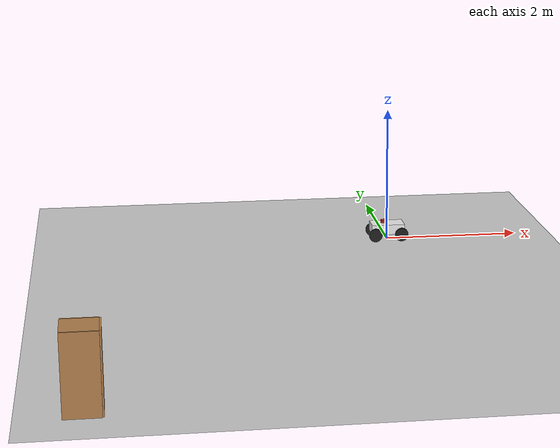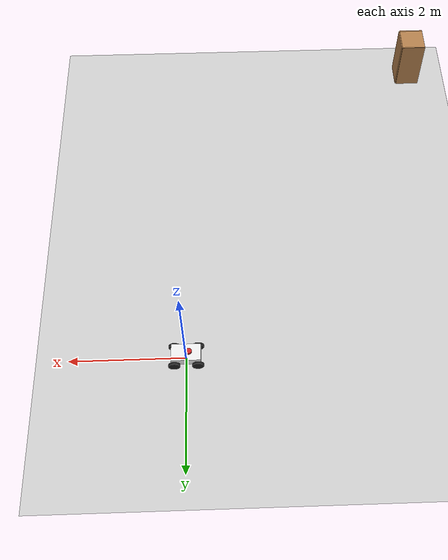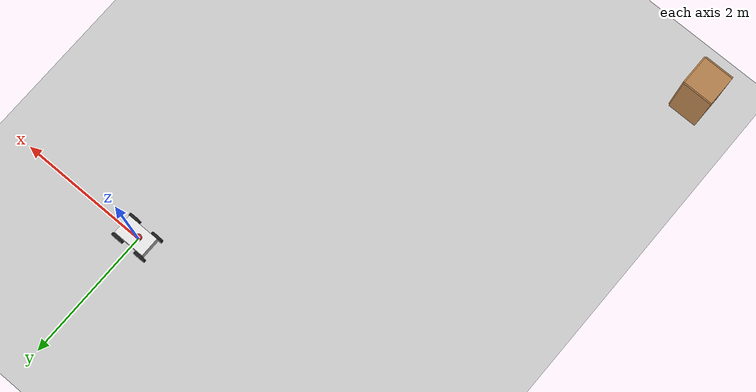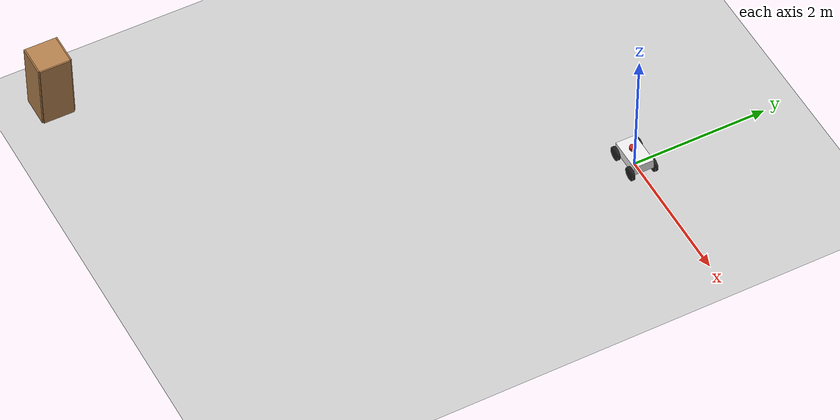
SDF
<sdf version="1.7">
 <world name="default">
  <light name="sun" type="directional">
   <pose>0 0 10 0 -0 0</pose>
   <diffuse>0.8 0.8 0.8 1</diffuse>
   <specular>0.2 0.2 0.2 1</specular>
   <attenuation>
    <range>1000</range>
    <constant>0.9</constant>
    <linear>0.01</linear>
    <quadratic>0.001</quadratic>
   </attenuation>
   <direction>-0.5 0.1 -0.9</direction>
   <spot><inner_angle>0</inner_angle><outer_angle>0</outer_angle><falloff>0</falloff></spot>
  </light>
  <model name="ground_plane">
   <static>1</static>
   <link name="link">
    <collision name="collision">
     <geometry><plane><normal>0 0 1</normal><size>100 100</size></plane></geometry>
     <surface>
      <contact><collide_bitmask>65535</collide_bitmask></contact>
      <friction><ode><mu>100</mu><mu2>50</mu2></ode></friction>
     </surface>
    </collision>
    <visual name="visual">
     <cast_shadows>0</cast_shadows>
     <geometry><plane><normal>0 0 1</normal><size>100 100</size></plane></geometry>
     <material>
      <script><uri>file://media/materials/scripts/gazebo.material</uri><name>Gazebo/Grey</name></script>
     </material>
    </visual>
   </link>
  </model>
  <gravity>0 0 -9.8</gravity>
  <magnetic_field>6e-06 2.3e-05 -4.2e-05</magnetic_field>
  <atmosphere type="adiabatic"/>
  <physics type="ode">
   <max_step_size>0.001</max_step_size>
   <real_time_factor>1</real_time_factor>
   <real_time_update_rate>1000</real_time_update_rate>
  </physics>
  <scene><ambient>0.4 0.4 0.4 1</ambient><background>0.7 0.7 0.7 1</background><shadows>1</shadows></scene>
  <audio><device>default</device></audio>
  <spherical_coordinates>
   <surface_model>EARTH_WGS84</surface_model>
   <latitude_deg>0</latitude_deg>
   <longitude_deg>0</longitude_deg>
   <elevation>0</elevation>
   <heading_deg>0</heading_deg>
  </spherical_coordinates>
  <model name="my_bot">
   <link name="base_link">
    <inertial>
     <pose>-0.008333 0 0.091667 0 -0 0</pose>
     <mass>0.6</mass>
     <inertia>
      <ixx>0.00559667</ixx>
      <ixy>0</ixy>
      <ixz>0.000416667</ixz>
      <iyy>0.0124717</iyy>
      <iyz>0</iyz>
      <izz>0.0145</izz>
     </inertia>
    </inertial>
    <collision name="base_link_fixed_joint_lump__chassis_collision">
     <pose>0 0 0.075 0 -0 0</pose>
     <geometry><box><size>0.5 0.3 0.15</size></box></geometry>
    </collision>
    <collision name="base_link_fixed_joint_lump__laser_frame_collision_1">
     <pose>-0.05 0 0.175 0 -0 0</pose>
     <geometry><cylinder><length>0.04</length><radius>0.05</radius></cylinder></geometry>
    </collision>
    <visual name="base_link_fixed_joint_lump__chassis_visual">
     <pose>0 0 0.075 0 -0 0</pose>
     <geometry><box><size>0.5 0.3 0.15</size></box></geometry>
     <material>
      <script><name>Gazebo/White</name><uri>file://media/materials/scripts/gazebo.material</uri></script>
     </material>
    </visual>
    <visual name="base_link_fixed_joint_lump__laser_frame_visual_1">
     <pose>-0.05 0 0.175 0 -0 0</pose>
     <geometry><cylinder><length>0.04</length><radius>0.05</radius></cylinder></geometry>
     <material>
      <script><name>Gazebo/Red</name><uri>file://media/materials/scripts/gazebo.material</uri></script>
     </material>
    </visual>
    <sensor name="laser" type="ray">
     <visualize>1</visualize>
     <always_on>1</always_on>
     <update_rate>10</update_rate>
     <ray>
      <scan>
       <horizontal>
        <samples>360</samples>
        <min_angle>-3.14</min_angle>
        <max_angle>3.14</max_angle>
        <resolution>1</resolution>
       </horizontal>
       <vertical><samples>1</samples><min_angle>0</min_angle><max_angle>0</max_angle></vertical>
      </scan>
      <range><min>0.3</min><max>12</max><resolution>0.01</resolution></range>
     </ray>
     <plugin name="laser_controller" filename="libgazebo_ros_ray_sensor.so">
      <ros><remapping>~/out:=scan</remapping></ros>
      <output_type>sensor_msgs/LaserScan</output_type>
      <frame_name>laser_frame</frame_name>
     </plugin>
     <pose>-0.05 0 0.175 0 -0 0</pose>
    </sensor>
   </link>
   <joint name="front_left_wheel_joint" type="revolute">
    <pose relative_to="base_link">0.2 0.175 0 -1.5708 0 0</pose>
    <parent>base_link</parent>
    <child>front_left_wheel</child>
    <axis>
     <xyz>0 0 1</xyz>
     <limit><lower>-1e+16</lower><upper>1e+16</upper></limit>
     <dynamics><spring_reference>0</spring_reference><spring_stiffness>0</spring_stiffness></dynamics>
    </axis>
   </joint>
   <link name="front_left_wheel">
    <pose relative_to="front_left_wheel_joint">0 0 0 0 -0 0</pose>
    <inertial>
     <mass>0.1</mass>
     <inertia>
      <ixx>0.000263333</ixx>
      <ixy>0</ixy>
      <ixz>0</ixz>
      <iyy>0.000263333</iyy>
      <iyz>0</iyz>
      <izz>0.0005</izz>
     </inertia>
    </inertial>
    <collision name="front_left_wheel_collision">
     <geometry><cylinder><length>0.04</length><radius>0.1</radius></cylinder></geometry>
    </collision>
    <visual name="front_left_wheel_visual">
     <geometry><cylinder><length>0.04</length><radius>0.1</radius></cylinder></geometry>
     <material>
      <script><name>Gazebo/Black</name><uri>file://media/materials/scripts/gazebo.material</uri></script>
     </material>
    </visual>
   </link>
   <joint name="front_right_wheel_joint" type="revolute">
    <pose relative_to="base_link">0.2 -0.175 0 1.5708 -0 0</pose>
    <parent>base_link</parent>
    <child>front_right_wheel</child>
    <axis>
     <xyz>0 0 -1</xyz>
     <limit><lower>-1e+16</lower><upper>1e+16</upper></limit>
     <dynamics><spring_reference>0</spring_reference><spring_stiffness>0</spring_stiffness></dynamics>
    </axis>
   </joint>
   <link name="front_right_wheel">
    <pose relative_to="front_right_wheel_joint">0 0 0 0 -0 0</pose>
    <inertial>
     <mass>0.1</mass>
     <inertia>
      <ixx>0.000263333</ixx>
      <ixy>0</ixy>
      <ixz>0</ixz>
      <iyy>0.000263333</iyy>
      <iyz>0</iyz>
      <izz>0.0005</izz>
     </inertia>
    </inertial>
    <collision name="front_right_wheel_collision">
     <geometry><cylinder><length>0.04</length><radius>0.1</radius></cylinder></geometry>
    </collision>
    <visual name="front_right_wheel_visual">
     <geometry><cylinder><length>0.04</length><radius>0.1</radius></cylinder></geometry>
     <material>
      <script><name>Gazebo/Black</name><uri>file://media/materials/scripts/gazebo.material</uri></script>
     </material>
    </visual>
   </link>
   <joint name="rear_left_wheel_joint" type="revolute">
    <pose relative_to="base_link">-0.2 0.175 0 -1.5708 0 0</pose>
    <parent>base_link</parent>
    <child>rear_left_wheel</child>
    <axis>
     <xyz>0 0 1</xyz>
     <limit><lower>-1e+16</lower><upper>1e+16</upper></limit>
     <dynamics><spring_reference>0</spring_reference><spring_stiffness>0</spring_stiffness></dynamics>
    </axis>
   </joint>
   <link name="rear_left_wheel">
    <pose relative_to="rear_left_wheel_joint">0 0 0 0 -0 0</pose>
    <inertial>
     <mass>0.1</mass>
     <inertia>
      <ixx>0.000263333</ixx>
      <ixy>0</ixy>
      <ixz>0</ixz>
      <iyy>0.000263333</iyy>
      <iyz>0</iyz>
      <izz>0.0005</izz>
     </inertia>
    </inertial>
    <collision name="rear_left_wheel_collision">
     <geometry><cylinder><length>0.04</length><radius>0.1</radius></cylinder></geometry>
    </collision>
    <visual name="rear_left_wheel_visual">
     <geometry><cylinder><length>0.04</length><radius>0.1</radius></cylinder></geometry>
     <material>
      <script><name>Gazebo/Black</name><uri>file://media/materials/scripts/gazebo.material</uri></script>
     </material>
    </visual>
   </link>
   <joint name="rear_right_wheel_joint" type="revolute">
    <pose relative_to="base_link">-0.2 -0.175 0 1.5708 -0 0</pose>
    <parent>base_link</parent>
    <child>rear_right_wheel</child>
    <axis>
     <xyz>0 0 -1</xyz>
     <limit><lower>-1e+16</lower><upper>1e+16</upper></limit>
     <dynamics><spring_reference>0</spring_reference><spring_stiffness>0</spring_stiffness></dynamics>
    </axis>
   </joint>
   <link name="rear_right_wheel">
    <pose relative_to="rear_right_wheel_joint">0 0 0 0 -0 0</pose>
    <inertial>
     <mass>0.1</mass>
     <inertia>
      <ixx>0.000263333</ixx>
      <ixy>0</ixy>
      <ixz>0</ixz>
      <iyy>0.000263333</iyy>
      <iyz>0</iyz>
      <izz>0.0005</izz>
     </inertia>
    </inertial>
    <collision name="rear_right_wheel_collision">
     <geometry><cylinder><length>0.04</length><radius>0.1</radius></cylinder></geometry>
    </collision>
    <visual name="rear_right_wheel_visual">
     <geometry><cylinder><length>0.04</length><radius>0.1</radius></cylinder></geometry>
     <material>
      <script><name>Gazebo/Black</name><uri>file://media/materials/scripts/gazebo.material</uri></script>
     </material>
    </visual>
   </link>
   <plugin name="front_wheel" filename="libgazebo_ros_diff_drive.so">
    <left_joint>front_left_wheel_joint</left_joint>
    <right_joint>front_right_wheel_joint</right_joint>
    <wheel_separation>0.35</wheel_separation>
    <wheel_diameter>0.1</wheel_diameter>
    <max_wheel_torque>200</max_wheel_torque>
    <max_wheel_acceleration>10.0</max_wheel_acceleration>
    <odometry_frame>odom</odometry_frame>
    <robot_base_frame>base_footprint</robot_base_frame>
    <publish_odom>1</publish_odom>
    <publish_odom_tf>1</publish_odom_tf>
    <publish_wheel_tf>1</publish_wheel_tf>
   </plugin>
   <static>0</static>
   <plugin name="rear_wheel" filename="libgazebo_ros_diff_drive.so">
    <left_joint>rear_left_wheel_joint</left_joint>
    <right_joint>rear_right_wheel_joint</right_joint>
    <wheel_separation>0.35</wheel_separation>
    <wheel_diameter>0.1</wheel_diameter>
    <max_wheel_torque>200</max_wheel_torque>
    <max_wheel_acceleration>10.0</max_wheel_acceleration>
    <odometry_frame>odom</odometry_frame>
    <robot_base_frame>base_footprint</robot_base_frame>
    <publish_odom>0</publish_odom>
    <publish_odom_tf>0</publish_odom_tf>
    <publish_wheel_tf>1</publish_wheel_tf>
   </plugin>
   <pose>-0.000887 0.000169 0.1 0 -0 0.000262</pose>
  </model>
  <model name="cabinet">
   <static>1</static>
   <link name="cabinet_bottom_plate">
    <inertial>
     <pose>0 0 -1 0 -0 0</pose>
     <inertia><ixx>2.05</ixx><ixy>0</ixy><ixz>0</ixz><iyy>2.05</iyy><iyz>0</iyz><izz>2.05</izz></inertia>
     <mass>25</mass>
    </inertial>
    <collision name="cabinet_bottom_plate_geom">
     <pose>0 0 0.01 0 -0 0</pose>
     <geometry><box><size>0.45 0.45 0.02</size></box></geometry>
    </collision>
    <visual name="cabinet_bottom_plate_geom_visual">
     <pose>0 0 0.01 0 -0 0</pose>
     <geometry><box><size>0.45 0.45 0.02</size></box></geometry>
     <material>
      <script><uri>file://media/materials/scripts/gazebo.material</uri><name>Gazebo/Wood</name></script>
     </material>
    </visual>
    <collision name="cabinet_bottom_plate_geom_cabinet_back_plate">
     <pose>0.235 0 0.51 0 -0 0</pose>
     <geometry><box><size>0.02 0.45 1.02</size></box></geometry>
    </collision>
    <visual name="cabinet_bottom_plate_geom_cabinet_back_plate_visual">
     <pose>0.235 0 0.51 0 -0 0</pose>
     <geometry><box><size>0.02 0.45 1.02</size></box></geometry>
     <material>
      <script><uri>file://media/materials/scripts/gazebo.material</uri><name>Gazebo/Wood</name></script>
     </material>
    </visual>
    <collision name="cabinet_bottom_plate_geom_cabinet_left_plate">
     <pose>0 0.235 0.51 0 -0 0</pose>
     <geometry><box><size>0.45 0.02 1.02</size></box></geometry>
    </collision>
    <visual name="cabinet_bottom_plate_geom_cabinet_left_plate_visual">
     <pose>0 0.235 0.51 0 -0 0</pose>
     <geometry><box><size>0.45 0.02 1.02</size></box></geometry>
     <material>
      <script><uri>file://media/materials/scripts/gazebo.material</uri><name>Gazebo/Wood</name></script>
     </material>
    </visual>
    <collision name="cabinet_bottom_plate_geom_cabinet_middle_plate">
     <pose>0 0 0.51 0 -0 0</pose>
     <geometry><box><size>0.45 0.45 0.02</size></box></geometry>
    </collision>
    <visual name="cabinet_bottom_plate_geom_cabinet_middle_plate_visual">
     <pose>0 0 0.51 0 -0 0</pose>
     <geometry><box><size>0.45 0.45 0.02</size></box></geometry>
     <material>
      <script><uri>file://media/materials/scripts/gazebo.material</uri><name>Gazebo/Wood</name></script>
     </material>
    </visual>
    <collision name="cabinet_bottom_plate_geom_cabinet_right_plate">
     <pose>0 -0.235 0.51 0 -0 0</pose>
     <geometry><box><size>0.45 0.02 1.02</size></box></geometry>
    </collision>
    <visual name="cabinet_bottom_plate_geom_cabinet_right_plate_visual">
     <pose>0 -0.235 0.51 0 -0 0</pose>
     <geometry><box><size>0.45 0.02 1.02</size></box></geometry>
     <material>
      <script><uri>file://media/materials/scripts/gazebo.material</uri><name>Gazebo/Wood</name></script>
     </material>
    </visual>
    <collision name="cabinet_bottom_plate_geom_cabinet_top_plate">
     <pose>0 0 1.01 0 -0 0</pose>
     <geometry><box><size>0.45 0.45 0.02</size></box></geometry>
    </collision>
    <visual name="cabinet_bottom_plate_geom_cabinet_top_plate_visual">
     <pose>0 0 1.01 0 -0 0</pose>
     <geometry><box><size>0.45 0.45 0.02</size></box></geometry>
     <material>
      <script><uri>file://media/materials/scripts/gazebo.material</uri><name>Gazebo/Wood</name></script>
     </material>
    </visual>
   </link>
   <pose>-4.56064 -6.40548 0 0 -0 0</pose>
  </model>
 </world>
</sdf>
